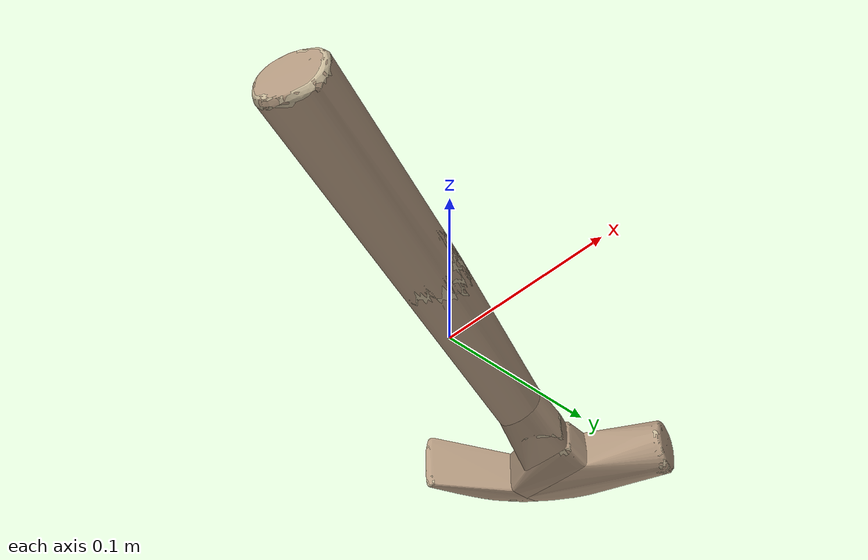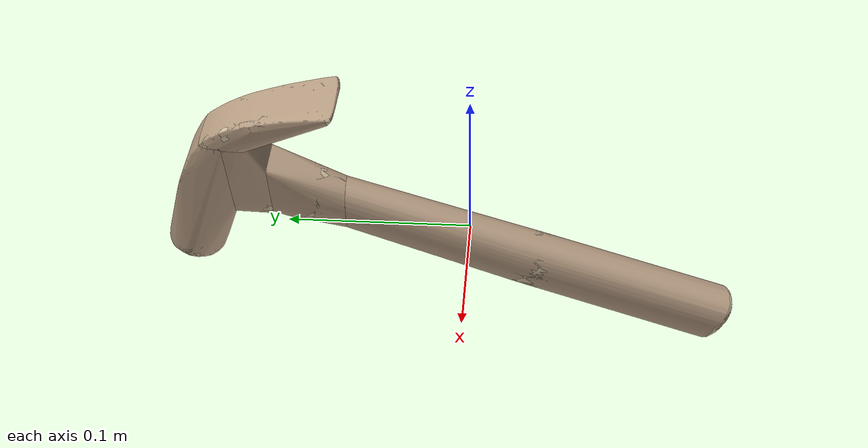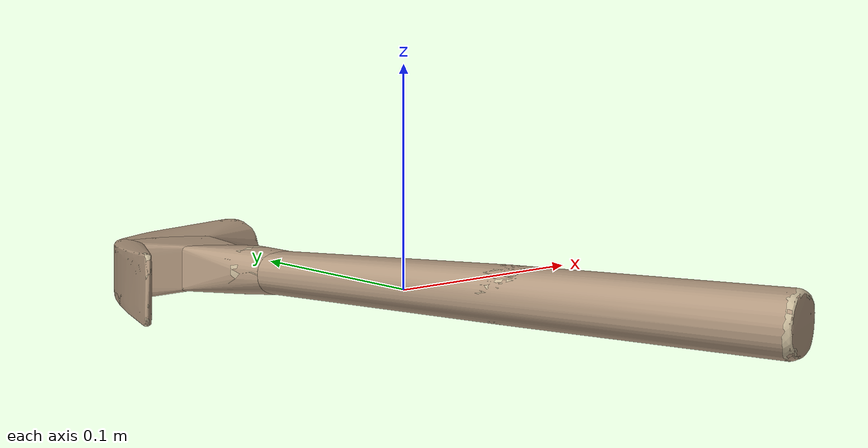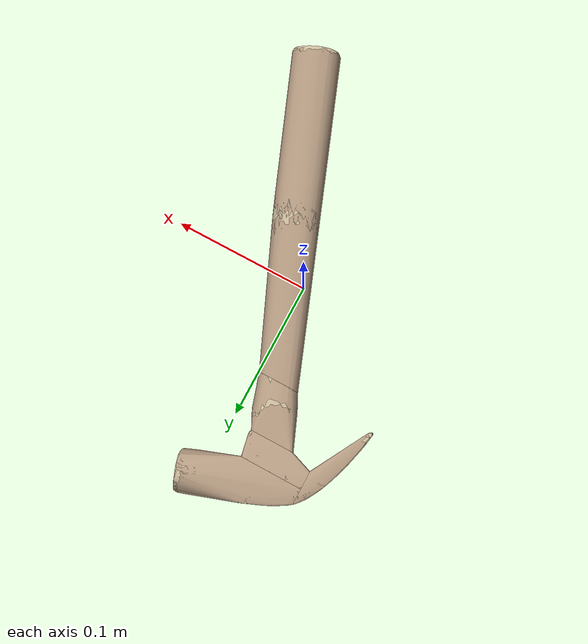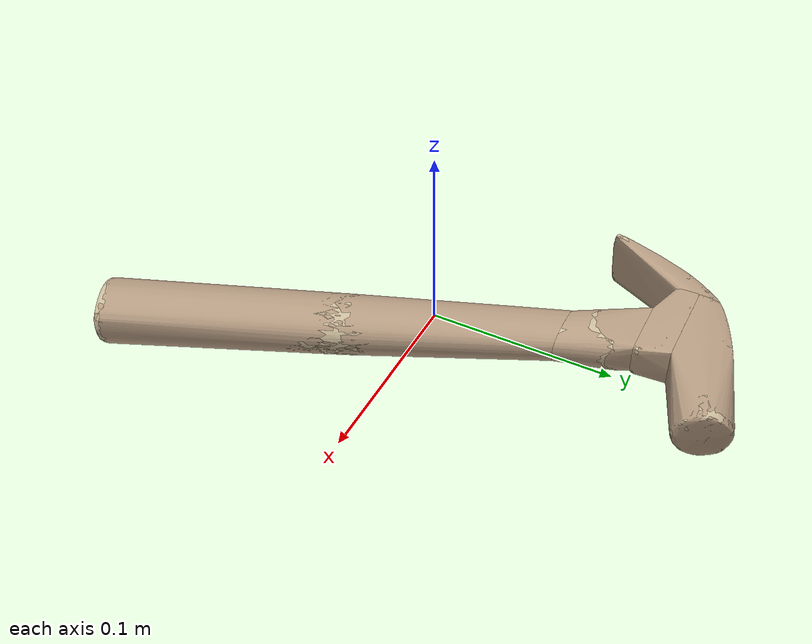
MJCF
<mujoco model="hammer"><asset><mesh name="hammer_part0" file="../ycb_mjcf/hammer/part_00.stl" /><mesh name="hammer_part1" file="../ycb_mjcf/hammer/part_01.stl" /><mesh name="hammer_part2" file="../ycb_mjcf/hammer/part_02.stl" /><mesh name="hammer_part3" file="../ycb_mjcf/hammer/part_03.stl" /><mesh name="hammer_part4" file="../ycb_mjcf/hammer/part_04.stl" /><mesh name="hammer_visual" file="../ycb_mjcf/hammer/visual.stl" /></asset><worldbody><body><body name="object"><geom type="mesh" mesh="hammer_part0" group="0" condim="4" solimp="0.9 0.95 0.001" solref="0.02 1" friction="0.95 0.3 0.1" rgba="0.7 0.6 0.5 1" /><geom type="mesh" mesh="hammer_part1" group="0" condim="4" solimp="0.9 0.95 0.001" solref="0.02 1" friction="0.95 0.3 0.1" rgba="0.7 0.6 0.5 1" /><geom type="mesh" mesh="hammer_part2" group="0" condim="4" solimp="0.9 0.95 0.001" solref="0.02 1" friction="0.95 0.3 0.1" rgba="0.7 0.6 0.5 1" /><geom type="mesh" mesh="hammer_part3" group="0" condim="4" solimp="0.9 0.95 0.001" solref="0.02 1" friction="0.95 0.3 0.1" rgba="0.7 0.6 0.5 1" /><geom type="mesh" mesh="hammer_part4" group="0" condim="4" solimp="0.9 0.95 0.001" solref="0.02 1" friction="0.95 0.3 0.1" rgba="0.7 0.6 0.5 1" /><geom type="mesh" mesh="hammer_visual" group="1" contype="0" conaffinity="0" mass="0" rgba="0.78 0.72 0.6 1" /></body><site name="bottom_site" rgba="0 0 0 0" size="0.005" pos="0.000000 0.000000 -0.016431" /><site name="top_site" rgba="0 0 0 0" size="0.005" pos="0.000000 0.000000 0.016431" /><site name="horizontal_radius_site" rgba="0 0 0 0" size="0.005" pos="0.189671 0.189671 0.000000" /></body></worldbody></mujoco>
